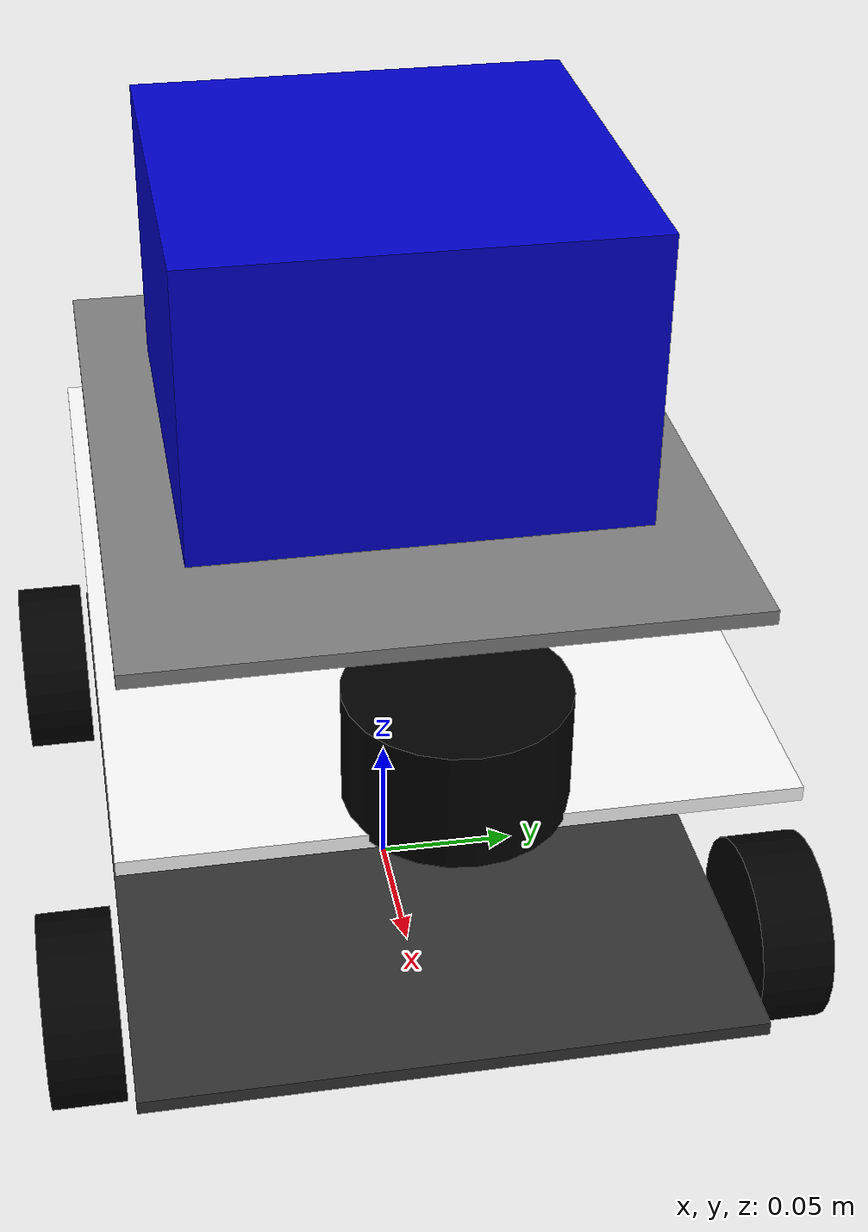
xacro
<?xml version="1.0"?>
<robot xmlns:xacro="http://www.ros.org/wiki/xacro" name="delivery_robot">

  <xacro:macro name="box_inertia" params="m w h d">
    <inertial>
      <origin xyz="0 0 0" rpy="0 0 0" />
      <mass value="${m}" />
      <inertia ixx="${(m/12) * (h*h + d*d)}" ixy="0.0" ixz="0.0"
               iyy="${(m/12) * (w*w + d*d)}" iyz="0.0"
               izz="${(m/12) * (w*w + h*h)}" />
    </inertial>
  </xacro:macro>

  <xacro:macro name="cylinder_inertia" params="m r h">
    <inertial>
      <mass value="${m}" />
      <inertia ixx="${(m/12) * (3*r*r + h*h)}" ixy="0" ixz="0" iyy="${(m/12) * (3*r*r + h*h)}"
        iyz="0" izz="${(m/2) * (r*r)}" />
    </inertial>
  </xacro:macro>

  <link name="base_footprint" />

  <joint name="base_footprint_joint" type="fixed">
    <parent link="base_footprint" />
    <child link="base_link" />
    <origin xyz="0 0 0.0325" rpy="0 0 0" />
  </joint>

  <link name="base_link">
    <visual>
      <geometry>
        <box size="0.297 0.210 0.005" />
      </geometry>
      <material name="dark_grey">
        <color rgba="0.2 0.2 0.2 1" />
      </material>
    </visual>
    <collision>
      <geometry>
        <box size="0.297 0.210 0.005" />
      </geometry>
    </collision>
    <xacro:box_inertia m="2.0" w="0.210" h="0.005" d="0.297" />
  </link>

  <xacro:macro name="wheel" params="prefix x_reflect y_reflect">
    <link name="${prefix}_wheel">
      <visual>
        <origin xyz="0 0 0" rpy="${pi/2} 0 0" />
        <geometry>
          <cylinder radius="0.0325" length="0.025" />
        </geometry>
        <material name="black">
          <color rgba="0 0 0 1" />
        </material>
      </visual>
      <collision>
        <origin xyz="0 0 0" rpy="${pi/2} 0 0" />
        <geometry>
          <cylinder radius="0.0325" length="0.025" />
        </geometry>
      </collision>
      <xacro:cylinder_inertia m="0.1" r="0.0325" h="0.025" />
    </link>
    <joint name="${prefix}_wheel_joint" type="continuous">
      <parent link="base_link" />
      <child link="${prefix}_wheel" />
      <origin xyz="${x_reflect*0.1} ${y_reflect*0.12} 0" rpy="0 0 0" />
      <axis xyz="0 1 0" />
    </joint>
  </xacro:macro>

  <xacro:wheel prefix="front_left" x_reflect="1" y_reflect="1" />
  <xacro:wheel prefix="front_right" x_reflect="1" y_reflect="-1" />
  <xacro:wheel prefix="rear_left" x_reflect="-1" y_reflect="1" />
  <xacro:wheel prefix="rear_right" x_reflect="-1" y_reflect="-1" />

  <link name="top_plate">
    <visual>
      <geometry>
        <box size="0.297 0.210 0.005" />
      </geometry>
      <material name="white">
        <color rgba="1 1 1 1" />
      </material>
    </visual>
    <collision>
      <geometry>
        <box size="0.297 0.210 0.005" />
      </geometry>
    </collision>
    <xacro:box_inertia m="0.4" w="0.210" h="0.005" d="0.297" />
  </link>
  <joint name="top_plate_joint" type="fixed">
    <parent link="base_link" />
    <child link="top_plate" />
    <origin xyz="0 0 0.1" />
  </joint>

  <link name="tray_stand">
    <visual>
      <geometry>
        <cylinder radius="0.01" length="0.05" />
      </geometry>
      <material name="grey">
        <color rgba="0.5 0.5 0.5 1" />
      </material>
    </visual>
    <xacro:cylinder_inertia m="0.1" r="0.01" h="0.05" />
  </link>
  <joint name="tray_stand_joint" type="fixed">
    <parent link="top_plate" />
    <child link="tray_stand" />
    <origin xyz="0 0 0.025" />
  </joint>

  <link name="tray_link">
    <visual>
      <geometry>
        <box size="0.25 0.20 0.005" />
      </geometry>
      <material name="grey">
        <color rgba="0.5 0.5 0.5 1" />
      </material>
    </visual>
    <xacro:box_inertia m="0.2" w="0.20" h="0.005" d="0.25" />
  </link>
  <joint name="tray_joint" type="fixed">
    <parent link="tray_stand" />
    <child link="tray_link" />
    <origin xyz="0 0 0.025" />
  </joint>

  <link name="payload_link">
    <visual>
      <origin xyz="0 0 0.05" />
      <geometry>
        <box size="0.15 0.15 0.1" />
      </geometry>
      <material name="blue">
        <color rgba="0 0 0.8 1" />
      </material>
    </visual>
    <xacro:box_inertia m="1.5" w="0.15" h="0.1" d="0.15" />
  </link>
  <joint name="payload_joint" type="fixed">
    <parent link="tray_link" />
    <child link="payload_link" />
    <origin xyz="0 0 0.005" />
  </joint>

  <link name="lidar_link">
    <visual>
      <geometry>
        <cylinder radius="0.035" length="0.04" />
      </geometry>
      <material name="black">
        <color rgba="0 0 0 1" />
      </material>
    </visual>
    <collision>
      <geometry>
        <cylinder radius="0.035" length="0.04" />
      </geometry>
    </collision>
    <xacro:cylinder_inertia m="0.15" r="0.035" h="0.04" />
  </link>
  <joint name="lidar_joint" type="fixed">
    <parent link="top_plate" />
    <child link="lidar_link" />
    <origin xyz="0.13 0 0.02" rpy="0 0 0" />
  </joint>

  <link name="imu_link">
    <inertial>
      <mass value="0.01" />
      <origin xyz="0 0 0" rpy="0 0 0" />
      <inertia ixx="1e-7" ixy="0" ixz="0" iyy="1e-7" iyz="0" izz="1e-7" />
    </inertial>
  </link>
  <joint name="imu_joint" type="fixed">
    <parent link="base_link" />
    <child link="imu_link" />
    <origin xyz="0 0 0.05" rpy="0 0 0" />
  </joint>

  <gazebo reference="base_link">
    <material>Gazebo/Grey</material>
  </gazebo>
  <gazebo reference="top_plate">
    <material>Gazebo/White</material>
  </gazebo>
  <gazebo reference="payload_link">
    <material>Gazebo/Blue</material>
  </gazebo>

  <gazebo>
  <plugin name="diff_drive" filename="libgazebo_ros_diff_drive.so">
    <left_joint>front_left_wheel_joint</left_joint>
    <right_joint>front_right_wheel_joint</right_joint>

    <wheel_separation>0.28</wheel_separation>
    <wheel_diameter>0.065</wheel_diameter>

    <max_wheel_torque>20</max_wheel_torque>
    <max_wheel_acceleration>1.0</max_wheel_acceleration>
    <publish_odom>true</publish_odom>
    <publish_odom_tf>true</publish_odom_tf>
    <publish_wheel_tf>true</publish_wheel_tf>

    <odometry_frame>odom</odometry_frame>
    <robot_base_frame>base_footprint</robot_base_frame>

    <odometry_source>1</odometry_source>
  </plugin>
  </gazebo>

  <gazebo reference="lidar_link">
    <sensor name="lidar" type="ray">
      <visualize>true</visualize>
      <update_rate>10</update_rate>
      <ray>
        <scan>
          <horizontal>
            <samples>360</samples>
            <min_angle>-3.14</min_angle>
            <max_angle>3.14</max_angle>
          </horizontal>
        </scan>
        <range>
          <min>0.20</min>
          <max>10.0</max>
          <resolution>0.01</resolution>
        </range>
      </ray>
      <plugin name="gazebo_ros_lidar" filename="libgazebo_ros_ray_sensor.so">
        <ros>
          <remapping>~/out:=scan</remapping>
        </ros>
        <output_type>sensor_msgs/LaserScan</output_type>
        <frame_name>lidar_link</frame_name>
      </plugin>
    </sensor>
  </gazebo>
  <gazebo reference="front_left_wheel">
    <mu1>0.5</mu1>
    <mu2>0.5</mu2>

    <kp>1000000.0</kp>
    <kd>100.0</kd>

  </gazebo>

  <gazebo reference="front_right_wheel">
    <mu1>0.5</mu1>
    <mu2>0.5</mu2>

    <kp>1000000.0</kp>
    <kd>100.0</kd>

  </gazebo>

  <gazebo reference="rear_left_wheel">
    <mu1>0.0</mu1>
    <mu2>0.0</mu2>

    <kp>1000000.0</kp>
    <kd>100.0</kd>

  </gazebo>

  <gazebo reference="rear_right_wheel">
    <mu1>0.0</mu1>
    <mu2>0.0</mu2>

    <kp>1000000.0</kp>
    <kd>100.0</kd>

  </gazebo>

</robot>
